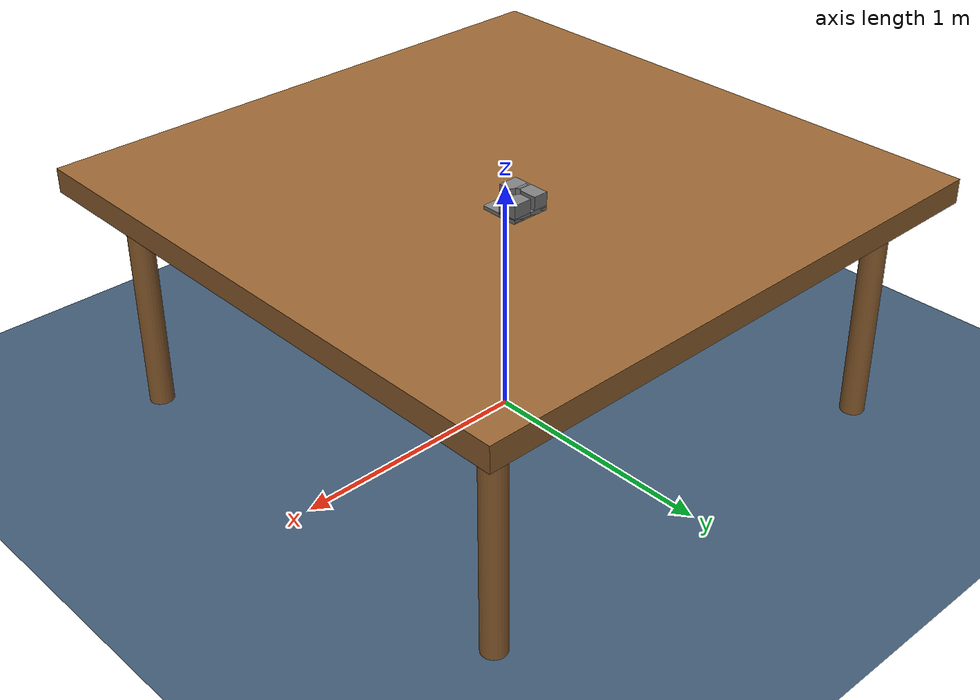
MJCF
<mujoco model="peg-in-hole">
  <option viscosity="0.1" gravity="0.0 0.0 0.0" timestep="0.001"/>
  <option>
    <flag  multiccd="disable" warmstart="enable"/>
  </option>
  <visual>
    <quality shadowsize="8192" />
  </visual>
  <compiler angle="radian"/>
  <default>
    <default class="visual">
      <geom group="3" type="mesh" contype="0" conaffinity="0"/>
    </default>
    <default class="collision">
      <geom group="2" type="mesh" solimp="0.9 0.95 0.001 0.5 2" solref="0.02 1" condim="6" />
    </default>
  </default>
  <asset>
    <texture name="chequered" type="2d" builtin="checker" width="300" height="300"
             rgb1="0.2 0.3 0.4" rgb2="0.3 0.4 0.5"/>

    <!-- Material using the checker texture and grid-like repeat -->
    <material name="grid" texture="chequered" texrepeat="5 5" reflectance="0.2"/>

    <!-- Simple material representing wood with brown color -->
    <material name="Wood" rgba="0.6 0.4 0.2 1.0"/>

    <material name="None" specular="0.8000000000000002" shininess="0.5" rgba="0.8 0.8 0.8 1"/>
    <mesh name="hole0" file="hole/hole_27/hole_27_collision_0.obj" scale="0.001 0.001 0.001"/>
    <mesh name="hole1" file="hole/hole_27/hole_27_collision_1.obj" scale="0.001 0.001 0.001"/>
    <mesh name="hole2" file="hole/hole_27/hole_27_collision_2.obj" scale="0.001 0.001 0.001"/>
    <mesh name="hole3" file="hole/hole_27/hole_27_collision_3.obj" scale="0.001 0.001 0.001"/>
    <mesh name="hole4" file="hole/hole_27/hole_27_collision_4.obj" scale="0.001 0.001 0.001"/>
    <mesh name="hole5" file="hole/hole_27/hole_27_collision_5.obj" scale="0.001 0.001 0.001"/>
    <mesh name="hole6" file="hole/hole_27/hole_27_collision_6.obj" scale="0.001 0.001 0.001"/>
    <mesh name="hole7" file="hole/hole_27/hole_27_collision_7.obj" scale="0.001 0.001 0.001"/>
    <mesh name="hole8" file="hole/hole_27/hole_27_collision_8.obj" scale="0.001 0.001 0.001"/>
    <mesh name="hole9" file="hole/hole_27/hole_27_collision_9.obj" scale="0.001 0.001 0.001"/>
    <mesh name="hole10" file="hole/hole_27/hole_27_collision_10.obj" scale="0.001 0.001 0.001"/>
    <mesh name="hole11" file="hole/hole_27/hole_27_collision_11.obj" scale="0.001 0.001 0.001"/>
    <mesh name="hole12" file="hole/hole_27/hole_27_collision_12.obj" scale="0.001 0.001 0.001"/>
    <mesh name="hole13" file="hole/hole_27/hole_27_collision_13.obj" scale="0.001 0.001 0.001"/>
    <mesh name="hole14" file="hole/hole_27/hole_27_collision_14.obj" scale="0.001 0.001 0.001"/>
    <mesh name="hole15" file="hole/hole_27/hole_27_collision_15.obj" scale="0.001 0.001 0.001"/>
    <mesh name="hole16" file="hole/hole_27/hole_27_collision_16.obj" scale="0.001 0.001 0.001"/>
    <mesh name="hole17" file="hole/hole_27/hole_27_collision_17.obj" scale="0.001 0.001 0.001"/>
    <mesh name="hole_visual" file="hole/hole_27/hole_27.obj" scale="0.001 0.001 0.001"/>
  </asset>

  <statistic center='0 0 0'/>
  <worldbody>
    <body name="floor" pos="0 0 0">
      <geom type="plane" size="2 2 0.1" material="grid"/>
    </body>

    <body name="table" pos="0 0 0">
        <!-- Tabletop as a box geometry with Wood material -->
        <geom name="table_top" type="box" size="1.2 1.2 0.05" pos="0 0 1" material="Wood"/>
        <geom type="cylinder" size="0.05 0.5" pos="-1.0 -1.0 0.5" material="Wood"/>
        <geom type="cylinder" size="0.05 0.5" pos="1.0 -1.0 0.5" material="Wood"/>
        <geom type="cylinder" size="0.05 0.5" pos="-1.0 1.0 0.5" material="Wood"/>
        <geom type="cylinder" size="0.05 0.5" pos="1.0 1.0 0.5" material="Wood"/>
    </body>

    <!-- workspace defined with two cylinder: outer - inner -->
    <body name="outer_workspace" pos="0.0 0.0 1.075" euler="0  0.0  0">
        <geom name="outer_workspace"  type="cylinder" size="0.4 0.001" rgba="0 1 0 0.15" conaffinity="0" contype="0" group="4"/>
    </body>
    <body name="inner_workspace" pos="0.0 0.0 1.0" euler="0  0.0  0">
        <geom name="inner_workspace" type="cylinder" size="0.3 0.001" rgba="1 0 0 0.15" conaffinity="0" contype="0" group="4"/>
    </body>

    <body name="hole" euler="1.5707 0 0" pos="0.17 0.23 1.03" mocap="true">
      <geom material="None" mesh="hole_visual" class="visual" mass="0.05"/>
      <geom mesh="hole0" class="collision"/>
      <geom mesh="hole1" class="collision"/>
      <geom mesh="hole2" class="collision"/>
      <geom mesh="hole3" class="collision"/>
      <geom mesh="hole4" class="collision"/>
      <geom mesh="hole5" class="collision"/>
      <geom mesh="hole6" class="collision"/>
      <geom mesh="hole7" class="collision"/>
      <geom mesh="hole8" class="collision"/>
      <geom mesh="hole9" class="collision"/>
      <geom mesh="hole10" class="collision"/>
      <geom mesh="hole11" class="collision"/>
      <geom mesh="hole12" class="collision"/>
      <geom mesh="hole13" class="collision"/>
      <geom mesh="hole14" class="collision"/>
      <geom mesh="hole15" class="collision"/>
      <geom mesh="hole16" class="collision"/>
      <geom mesh="hole17" class="collision"/>
      <body name="hole_frame" euler="-1.5707 0 0" pos="0 0.03 0"/>
    </body>

    <body name="camera_center" euler="0  0.0  0" pos="0.3 0.0 1.1">
        </body>

    <body name="fixed_camera_body" euler="0  0.0  0" pos="0.65 0.1 2.3">
      <camera name="fixed_camera"  mode="targetbody" target="camera_center" fovy="42.5" />
    </body>

  </worldbody>
</mujoco>
